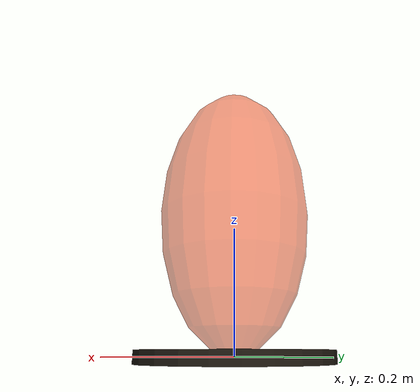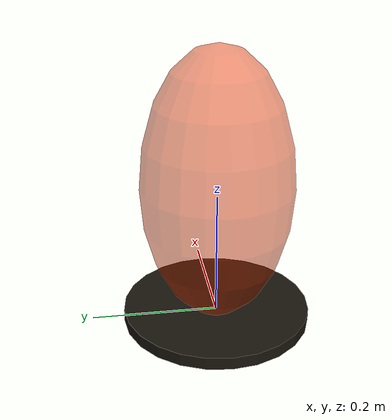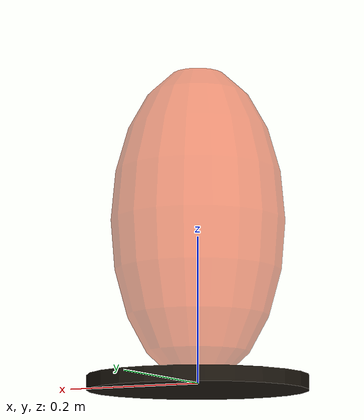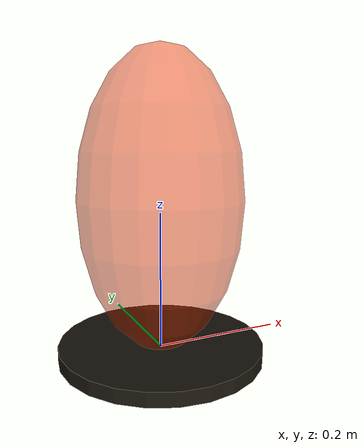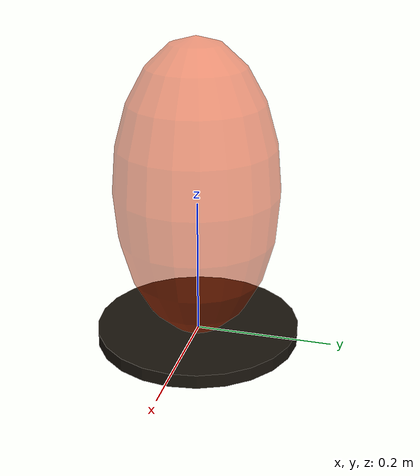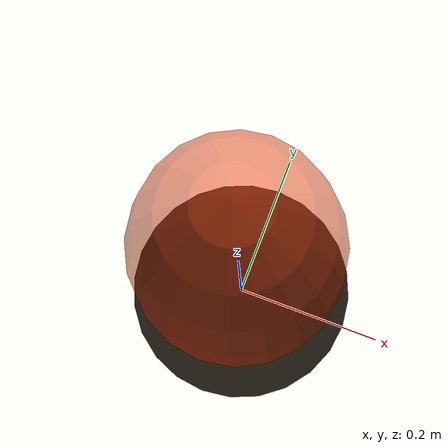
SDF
<?xml version="1.0" ?>
<sdf version="1.8">
  <model name="fire">
    <static>true</static>

    <link name="base_link">
      <!-- Dark burn mark on ground -->
      <visual name="base_visual">
        <geometry>
          <cylinder>
            <radius>0.15</radius>
            <length>0.02</length>
          </cylinder>
        </geometry>
        <material>
          <ambient>0.05 0.05 0.05 1</ambient>
          <diffuse>0.1 0.08 0.05 1</diffuse>
        </material>
      </visual>

      <!-- Outer flame (red-orange, larger) -->
      <visual name="flame_outer">
        <pose>0 0 0.22 0 0 0</pose>
        <geometry>
          <ellipsoid>
            <radii>0.12 0.12 0.22</radii>
          </ellipsoid>
        </geometry>
        <material>
          <ambient>0.8 0.2 0.0 0.5</ambient>
          <diffuse>0.9 0.2 0.0 0.5</diffuse>
          <emissive>1.0 0.3 0.0 1.0</emissive>
        </material>
        <transparency>0.4</transparency>
      </visual>

      <!-- Middle flame (orange-yellow) -->
      <visual name="flame_mid">
        <pose>0 0 0.20 0 0 0</pose>
        <geometry>
          <ellipsoid>
            <radii>0.08 0.08 0.18</radii>
          </ellipsoid>
        </geometry>
        <material>
          <ambient>1.0 0.5 0.0 0.6</ambient>
          <diffuse>1.0 0.6 0.0 0.6</diffuse>
          <emissive>1.0 0.6 0.0 1.0</emissive>
        </material>
        <transparency>0.3</transparency>
      </visual>

      <!-- Inner flame core (bright yellow-white) -->
      <visual name="flame_core">
        <pose>0 0 0.15 0 0 0</pose>
        <geometry>
          <ellipsoid>
            <radii>0.04 0.04 0.12</radii>
          </ellipsoid>
        </geometry>
        <material>
          <ambient>1.0 0.9 0.3 0.8</ambient>
          <diffuse>1.0 1.0 0.5 0.8</diffuse>
          <emissive>1.0 1.0 0.7 1.0</emissive>
        </material>
        <transparency>0.2</transparency>
      </visual>
    </link>

    <!-- Fix to world -->
    <joint name="frame_fix" type="fixed">
      <parent>world</parent>
      <child>base_link</child>
    </joint>

  </model>
</sdf>
